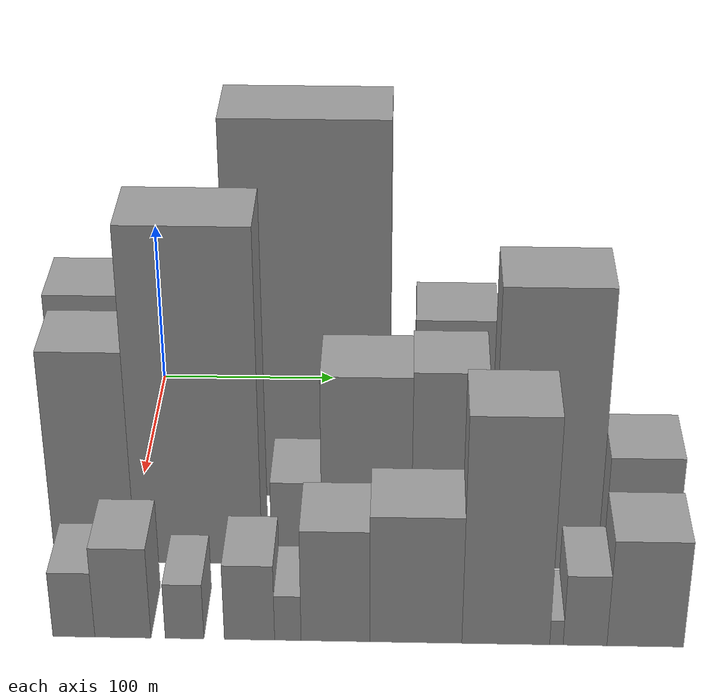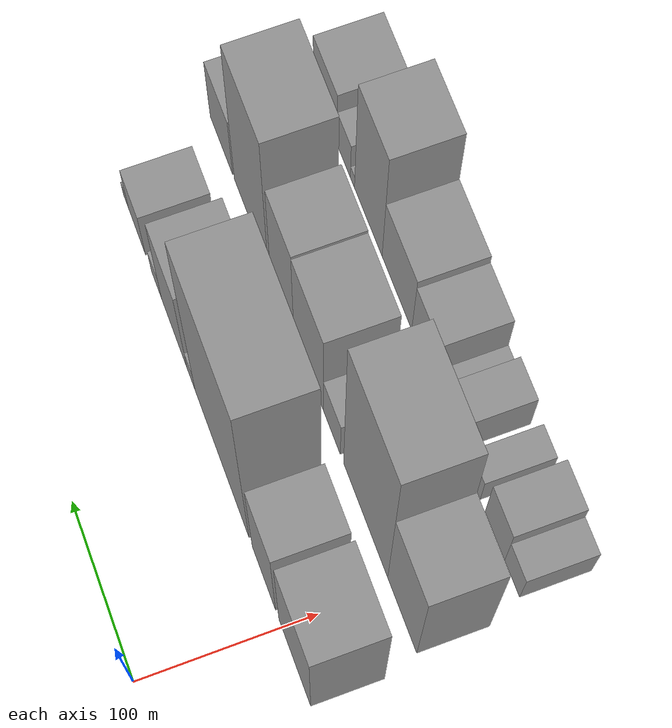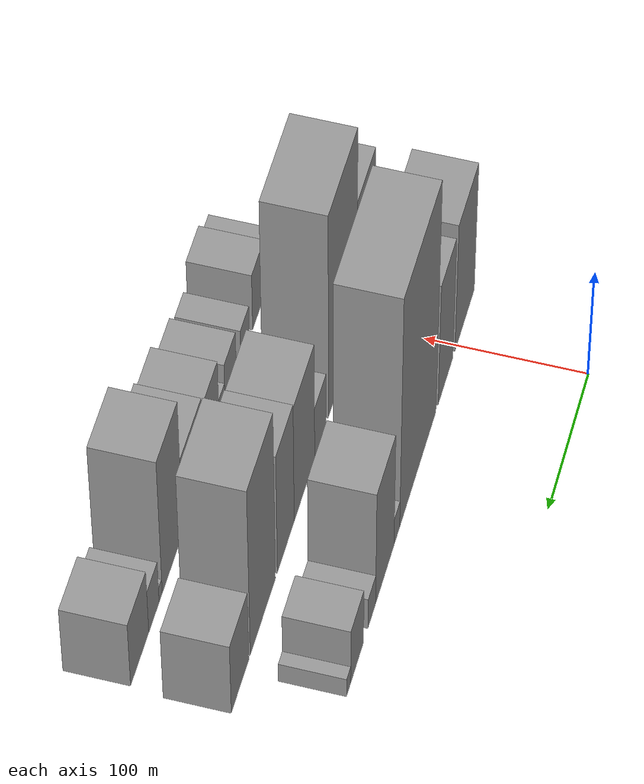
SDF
<sdf version="1.6">
 <world name="default">
  <model name="building_19">
   <static>1</static>
   <pose>100.0000 -19.1620 0 0.000000 0.000000 0.000000</pose>
   <link name="link">
    <pose>0 0 61.50 0 0 0</pose>
    <collision name="collision"><geometry><box><size>40.0000 47.2656 123.0000</size></box></geometry></collision>
    <visual name="visual">
     <cast_shadows>0</cast_shadows>
     <geometry><box><size>40.0000 47.2656 123.0000</size></box></geometry>
     <material>
      <script>
       <uri>model://grey_wall/materials/scripts</uri>
       <uri>model://grey_wall/materials/textures</uri>
       <name>vrc/grey_wall</name>
      </script>
     </material>
    </visual>
   </link>
  </model>
  <model name="building_20">
   <static>1</static>
   <pose>100.0000 27.2043 0 0.000000 0.000000 0.000000</pose>
   <link name="link">
    <pose>0 0 58.50 0 0 0</pose>
    <collision name="collision"><geometry><box><size>40.0000 35.4669 117.0000</size></box></geometry></collision>
    <visual name="visual">
     <cast_shadows>0</cast_shadows>
     <geometry><box><size>40.0000 35.4669 117.0000</size></box></geometry>
     <material>
      <script>
       <uri>model://grey_wall/materials/scripts</uri>
       <uri>model://grey_wall/materials/textures</uri>
       <name>vrc/grey_wall</name>
      </script>
     </material>
    </visual>
   </link>
  </model>
  <model name="building_21">
   <static>1</static>
   <pose>100.0000 92.3485 0 0.000000 0.000000 0.000000</pose>
   <link name="link">
    <pose>0 0 111.00 0 0 0</pose>
    <collision name="collision"><geometry><box><size>40.0000 84.8216 222.0000</size></box></geometry></collision>
    <visual name="visual">
     <cast_shadows>0</cast_shadows>
     <geometry><box><size>40.0000 84.8216 222.0000</size></box></geometry>
     <material>
      <script>
       <uri>model://grey_wall/materials/scripts</uri>
       <uri>model://grey_wall/materials/textures</uri>
       <name>vrc/grey_wall</name>
      </script>
     </material>
    </visual>
   </link>
  </model>
  <model name="building_22">
   <static>1</static>
   <pose>100.0000 141.3330 0 0.000000 0.000000 0.000000</pose>
   <link name="link">
    <pose>0 0 13.50 0 0 0</pose>
    <collision name="collision"><geometry><box><size>40.0000 13.1473 27.0000</size></box></geometry></collision>
    <visual name="visual">
     <cast_shadows>0</cast_shadows>
     <geometry><box><size>40.0000 13.1473 27.0000</size></box></geometry>
     <material>
      <script>
       <uri>model://grey_wall/materials/scripts</uri>
       <uri>model://grey_wall/materials/textures</uri>
       <name>vrc/grey_wall</name>
      </script>
     </material>
    </visual>
   </link>
  </model>
  <model name="building_23">
   <static>1</static>
   <pose>100.0000 168.8270 0 0.000000 0.000000 0.000000</pose>
   <link name="link">
    <pose>0 0 55.50 0 0 0</pose>
    <collision name="collision"><geometry><box><size>40.0000 41.8408 111.0000</size></box></geometry></collision>
    <visual name="visual">
     <cast_shadows>0</cast_shadows>
     <geometry><box><size>40.0000 41.8408 111.0000</size></box></geometry>
     <material>
      <script>
       <uri>model://grey_wall/materials/scripts</uri>
       <uri>model://grey_wall/materials/textures</uri>
       <name>vrc/grey_wall</name>
      </script>
     </material>
    </visual>
   </link>
  </model>
  <model name="building_24">
   <static>1</static>
   <pose>100.0000 198.2511 0 0.000000 0.000000 0.000000</pose>
   <link name="link">
    <pose>0 0 15.00 0 0 0</pose>
    <collision name="collision"><geometry><box><size>40.0000 17.0074 30.0000</size></box></geometry></collision>
    <visual name="visual">
     <cast_shadows>0</cast_shadows>
     <geometry><box><size>40.0000 17.0074 30.0000</size></box></geometry>
     <material>
      <script>
       <uri>model://grey_wall/materials/scripts</uri>
       <uri>model://grey_wall/materials/textures</uri>
       <name>vrc/grey_wall</name>
      </script>
     </material>
    </visual>
   </link>
  </model>
  <model name="building_25">
   <static>1</static>
   <pose>100.0000 231.0359 0 0.000000 0.000000 0.000000</pose>
   <link name="link">
    <pose>0 0 27.00 0 0 0</pose>
    <collision name="collision"><geometry><box><size>40.0000 28.5621 54.0000</size></box></geometry></collision>
    <visual name="visual">
     <cast_shadows>0</cast_shadows>
     <geometry><box><size>40.0000 28.5621 54.0000</size></box></geometry>
     <material>
      <script>
       <uri>model://grey_wall/materials/scripts</uri>
       <uri>model://grey_wall/materials/textures</uri>
       <name>vrc/grey_wall</name>
      </script>
     </material>
    </visual>
   </link>
  </model>
  <model name="building_26">
   <static>1</static>
   <pose>100.0000 249.7770 0 0.000000 0.000000 0.000000</pose>
   <link name="link">
    <pose>0 0 9.00 0 0 0</pose>
    <collision name="collision"><geometry><box><size>40.0000 8.9201 18.0000</size></box></geometry></collision>
    <visual name="visual">
     <cast_shadows>0</cast_shadows>
     <geometry><box><size>40.0000 8.9201 18.0000</size></box></geometry>
     <material>
      <script>
       <uri>model://grey_wall/materials/scripts</uri>
       <uri>model://grey_wall/materials/textures</uri>
       <name>vrc/grey_wall</name>
      </script>
     </material>
    </visual>
   </link>
  </model>
  <model name="building_52">
   <static>1</static>
   <pose>160.0000 -15.4407 0 0.000000 0.000000 0.000000</pose>
   <link name="link">
    <pose>0 0 63.00 0 0 0</pose>
    <collision name="collision"><geometry><box><size>40.0000 41.7063 126.0000</size></box></geometry></collision>
    <visual name="visual">
     <cast_shadows>0</cast_shadows>
     <geometry><box><size>40.0000 41.7063 126.0000</size></box></geometry>
     <material>
      <script>
       <uri>model://grey_wall/materials/scripts</uri>
       <uri>model://grey_wall/materials/textures</uri>
       <name>vrc/grey_wall</name>
      </script>
     </material>
    </visual>
   </link>
  </model>
  <model name="building_53">
   <static>1</static>
   <pose>160.0000 37.9441 0 0.000000 0.000000 0.000000</pose>
   <link name="link">
    <pose>0 0 97.50 0 0 0</pose>
    <collision name="collision"><geometry><box><size>40.0000 65.0634 195.0000</size></box></geometry></collision>
    <visual name="visual">
     <cast_shadows>0</cast_shadows>
     <geometry><box><size>40.0000 65.0634 195.0000</size></box></geometry>
     <material>
      <script>
       <uri>model://grey_wall/materials/scripts</uri>
       <uri>model://grey_wall/materials/textures</uri>
       <name>vrc/grey_wall</name>
      </script>
     </material>
    </visual>
   </link>
  </model>
  <model name="building_54">
   <static>1</static>
   <pose>160.0000 88.3053 0 0.000000 0.000000 0.000000</pose>
   <link name="link">
    <pose>0 0 25.50 0 0 0</pose>
    <collision name="collision"><geometry><box><size>40.0000 25.6590 51.0000</size></box></geometry></collision>
    <visual name="visual">
     <cast_shadows>0</cast_shadows>
     <geometry><box><size>40.0000 25.6590 51.0000</size></box></geometry>
     <material>
      <script>
       <uri>model://grey_wall/materials/scripts</uri>
       <uri>model://grey_wall/materials/textures</uri>
       <name>vrc/grey_wall</name>
      </script>
     </material>
    </visual>
   </link>
  </model>
  <model name="building_55">
   <static>1</static>
   <pose>160.0000 123.8936 0 0.000000 0.000000 0.000000</pose>
   <link name="link">
    <pose>0 0 57.00 0 0 0</pose>
    <collision name="collision"><geometry><box><size>40.0000 45.5176 114.0000</size></box></geometry></collision>
    <visual name="visual">
     <cast_shadows>0</cast_shadows>
     <geometry><box><size>40.0000 45.5176 114.0000</size></box></geometry>
     <material>
      <script>
       <uri>model://grey_wall/materials/scripts</uri>
       <uri>model://grey_wall/materials/textures</uri>
       <name>vrc/grey_wall</name>
      </script>
     </material>
    </visual>
   </link>
  </model>
  <model name="building_56">
   <static>1</static>
   <pose>160.0000 165.1311 0 0.000000 0.000000 0.000000</pose>
   <link name="link">
    <pose>0 0 58.50 0 0 0</pose>
    <collision name="collision"><geometry><box><size>40.0000 36.9574 117.0000</size></box></geometry></collision>
    <visual name="visual">
     <cast_shadows>0</cast_shadows>
     <geometry><box><size>40.0000 36.9574 117.0000</size></box></geometry>
     <material>
      <script>
       <uri>model://grey_wall/materials/scripts</uri>
       <uri>model://grey_wall/materials/textures</uri>
       <name>vrc/grey_wall</name>
      </script>
     </material>
    </visual>
   </link>
  </model>
  <model name="building_57">
   <static>1</static>
   <pose>160.0000 214.6850 0 0.000000 0.000000 0.000000</pose>
   <link name="link">
    <pose>0 0 82.50 0 0 0</pose>
    <collision name="collision"><geometry><box><size>40.0000 54.1504 165.0000</size></box></geometry></collision>
    <visual name="visual">
     <cast_shadows>0</cast_shadows>
     <geometry><box><size>40.0000 54.1504 165.0000</size></box></geometry>
     <material>
      <script>
       <uri>model://grey_wall/materials/scripts</uri>
       <uri>model://grey_wall/materials/textures</uri>
       <name>vrc/grey_wall</name>
      </script>
     </material>
    </visual>
   </link>
  </model>
  <model name="building_58">
   <static>1</static>
   <pose>160.0000 263.2903 0 0.000000 0.000000 0.000000</pose>
   <link name="link">
    <pose>0 0 34.50 0 0 0</pose>
    <collision name="collision"><geometry><box><size>40.0000 37.0603 69.0000</size></box></geometry></collision>
    <visual name="visual">
     <cast_shadows>0</cast_shadows>
     <geometry><box><size>40.0000 37.0603 69.0000</size></box></geometry>
     <material>
      <script>
       <uri>model://grey_wall/materials/scripts</uri>
       <uri>model://grey_wall/materials/textures</uri>
       <name>vrc/grey_wall</name>
      </script>
     </material>
    </visual>
   </link>
  </model>
  <model name="building_84">
   <static>1</static>
   <pose>220.0000 -17.4102 0 0.000000 0.000000 0.000000</pose>
   <link name="link">
    <pose>0 0 19.50 0 0 0</pose>
    <collision name="collision"><geometry><box><size>40.0000 20.5329 39.0000</size></box></geometry></collision>
    <visual name="visual">
     <cast_shadows>0</cast_shadows>
     <geometry><box><size>40.0000 20.5329 39.0000</size></box></geometry>
     <material>
      <script>
       <uri>model://grey_wall/materials/scripts</uri>
       <uri>model://grey_wall/materials/textures</uri>
       <name>vrc/grey_wall</name>
      </script>
     </material>
    </visual>
   </link>
  </model>
  <model name="building_85">
   <static>1</static>
   <pose>220.0000 6.5719 0 0.000000 0.000000 0.000000</pose>
   <link name="link">
    <pose>0 0 27.00 0 0 0</pose>
    <collision name="collision"><geometry><box><size>40.0000 27.4313 54.0000</size></box></geometry></collision>
    <visual name="visual">
     <cast_shadows>0</cast_shadows>
     <geometry><box><size>40.0000 27.4313 54.0000</size></box></geometry>
     <material>
      <script>
       <uri>model://grey_wall/materials/scripts</uri>
       <uri>model://grey_wall/materials/textures</uri>
       <name>vrc/grey_wall</name>
      </script>
     </material>
    </visual>
   </link>
  </model>
  <model name="building_86">
   <static>1</static>
   <pose>220.0000 36.7183 0 0.000000 0.000000 0.000000</pose>
   <link name="link">
    <pose>0 0 16.50 0 0 0</pose>
    <collision name="collision"><geometry><box><size>40.0000 18.8615 33.0000</size></box></geometry></collision>
    <visual name="visual">
     <cast_shadows>0</cast_shadows>
     <geometry><box><size>40.0000 18.8615 33.0000</size></box></geometry>
     <material>
      <script>
       <uri>model://grey_wall/materials/scripts</uri>
       <uri>model://grey_wall/materials/textures</uri>
       <name>vrc/grey_wall</name>
      </script>
     </material>
    </visual>
   </link>
  </model>
  <model name="building_87">
   <static>1</static>
   <pose>220.0000 68.3978 0 0.000000 0.000000 0.000000</pose>
   <link name="link">
    <pose>0 0 22.50 0 0 0</pose>
    <collision name="collision"><geometry><box><size>40.0000 24.4976 45.0000</size></box></geometry></collision>
    <visual name="visual">
     <cast_shadows>0</cast_shadows>
     <geometry><box><size>40.0000 24.4976 45.0000</size></box></geometry>
     <material>
      <script>
       <uri>model://grey_wall/materials/scripts</uri>
       <uri>model://grey_wall/materials/textures</uri>
       <name>vrc/grey_wall</name>
      </script>
     </material>
    </visual>
   </link>
  </model>
  <model name="building_88">
   <static>1</static>
   <pose>220.0000 87.0876 0 0.000000 0.000000 0.000000</pose>
   <link name="link">
    <pose>0 0 13.50 0 0 0</pose>
    <collision name="collision"><geometry><box><size>40.0000 12.8821 27.0000</size></box></geometry></collision>
    <visual name="visual">
     <cast_shadows>0</cast_shadows>
     <geometry><box><size>40.0000 12.8821 27.0000</size></box></geometry>
     <material>
      <script>
       <uri>model://grey_wall/materials/scripts</uri>
       <uri>model://grey_wall/materials/textures</uri>
       <name>vrc/grey_wall</name>
      </script>
     </material>
    </visual>
   </link>
  </model>
  <model name="building_89">
   <static>1</static>
   <pose>220.0000 110.2400 0 0.000000 0.000000 0.000000</pose>
   <link name="link">
    <pose>0 0 33.00 0 0 0</pose>
    <collision name="collision"><geometry><box><size>40.0000 33.4228 66.0000</size></box></geometry></collision>
    <visual name="visual">
     <cast_shadows>0</cast_shadows>
     <geometry><box><size>40.0000 33.4228 66.0000</size></box></geometry>
     <material>
      <script>
       <uri>model://grey_wall/materials/scripts</uri>
       <uri>model://grey_wall/materials/textures</uri>
       <name>vrc/grey_wall</name>
      </script>
     </material>
    </visual>
   </link>
  </model>
  <model name="building_90">
   <static>1</static>
   <pose>220.0000 149.3090 0 0.000000 0.000000 0.000000</pose>
   <link name="link">
    <pose>0 0 37.50 0 0 0</pose>
    <collision name="collision"><geometry><box><size>40.0000 44.7152 75.0000</size></box></geometry></collision>
    <visual name="visual">
     <cast_shadows>0</cast_shadows>
     <geometry><box><size>40.0000 44.7152 75.0000</size></box></geometry>
     <material>
      <script>
       <uri>model://grey_wall/materials/scripts</uri>
       <uri>model://grey_wall/materials/textures</uri>
       <name>vrc/grey_wall</name>
      </script>
     </material>
    </visual>
   </link>
  </model>
  <model name="building_91">
   <static>1</static>
   <pose>220.0000 192.9752 0 0.000000 0.000000 0.000000</pose>
   <link name="link">
    <pose>0 0 66.00 0 0 0</pose>
    <collision name="collision"><geometry><box><size>40.0000 42.6171 132.0000</size></box></geometry></collision>
    <visual name="visual">
     <cast_shadows>0</cast_shadows>
     <geometry><box><size>40.0000 42.6171 132.0000</size></box></geometry>
     <material>
      <script>
       <uri>model://grey_wall/materials/scripts</uri>
       <uri>model://grey_wall/materials/textures</uri>
       <name>vrc/grey_wall</name>
      </script>
     </material>
    </visual>
   </link>
  </model>
  <model name="building_92">
   <static>1</static>
   <pose>220.0000 217.5393 0 0.000000 0.000000 0.000000</pose>
   <link name="link">
    <pose>0 0 7.50 0 0 0</pose>
    <collision name="collision"><geometry><box><size>40.0000 6.5111 15.0000</size></box></geometry></collision>
    <visual name="visual">
     <cast_shadows>0</cast_shadows>
     <geometry><box><size>40.0000 6.5111 15.0000</size></box></geometry>
     <material>
      <script>
       <uri>model://grey_wall/materials/scripts</uri>
       <uri>model://grey_wall/materials/textures</uri>
       <name>vrc/grey_wall</name>
      </script>
     </material>
    </visual>
   </link>
  </model>
  <model name="building_93">
   <static>1</static>
   <pose>220.0000 231.3935 0 0.000000 0.000000 0.000000</pose>
   <link name="link">
    <pose>0 0 21.00 0 0 0</pose>
    <collision name="collision"><geometry><box><size>40.0000 21.1973 42.0000</size></box></geometry></collision>
    <visual name="visual">
     <cast_shadows>0</cast_shadows>
     <geometry><box><size>40.0000 21.1973 42.0000</size></box></geometry>
     <material>
      <script>
       <uri>model://grey_wall/materials/scripts</uri>
       <uri>model://grey_wall/materials/textures</uri>
       <name>vrc/grey_wall</name>
      </script>
     </material>
    </visual>
   </link>
  </model>
  <model name="building_94">
   <static>1</static>
   <pose>220.0000 260.5149 0 0.000000 0.000000 0.000000</pose>
   <link name="link">
    <pose>0 0 31.50 0 0 0</pose>
    <collision name="collision"><geometry><box><size>40.0000 37.0454 63.0000</size></box></geometry></collision>
    <visual name="visual">
     <cast_shadows>0</cast_shadows>
     <geometry><box><size>40.0000 37.0454 63.0000</size></box></geometry>
     <material>
      <script>
       <uri>model://grey_wall/materials/scripts</uri>
       <uri>model://grey_wall/materials/textures</uri>
       <name>vrc/grey_wall</name>
      </script>
     </material>
    </visual>
   </link>
  </model>
 </world>
</sdf>
